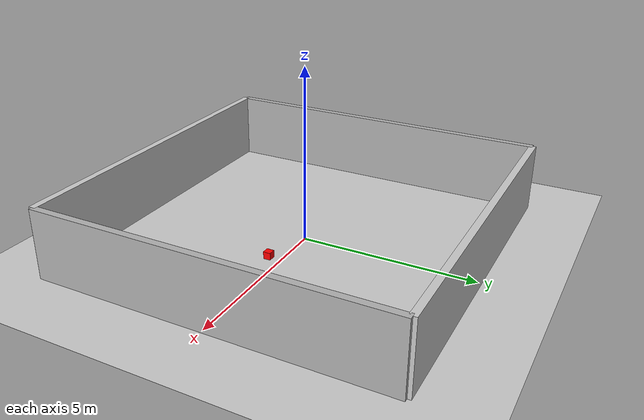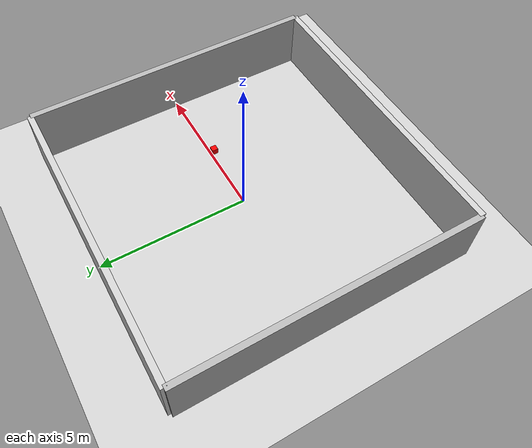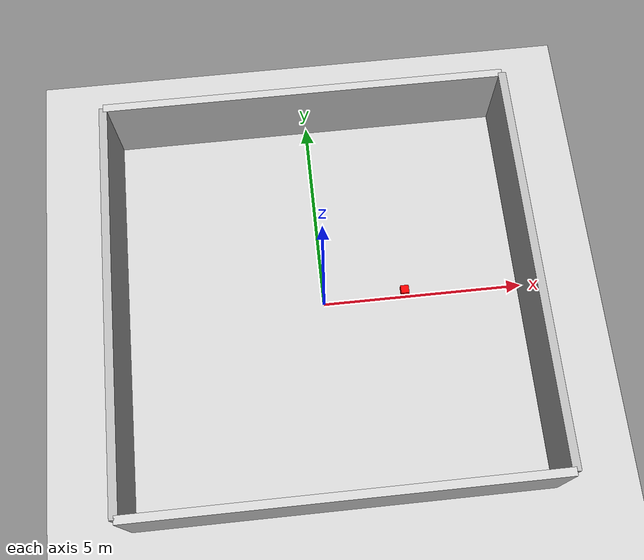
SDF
<sdf version="1.7">
 <world name="simple_world">
  <include><uri>model://sun</uri></include>
  <include><uri>model://ground_plane</uri></include>
  <physics name="default_physics" type="ode">
   <max_step_size>0.001</max_step_size>
   <real_time_factor>1</real_time_factor>
   <real_time_update_rate>1000</real_time_update_rate>
   <gravity>0 0 -9.8</gravity>
  </physics>
  <model name="wall_front">
   <pose>0 5 1 0 0 0</pose>
   <link name="link">
    <collision name="collision"><geometry><box><size>10 0.2 2</size></box></geometry></collision>
    <visual name="visual">
     <geometry><box><size>10 0.2 2</size></box></geometry>
     <material>
      <ambient>0.8 0.8 0.8 1</ambient>
      <diffuse>0.8 0.8 0.8 1</diffuse>
      <specular>0.1 0.1 0.1 1</specular>
     </material>
    </visual>
    <inertial>
     <mass>100</mass>
     <inertia><ixx>1</ixx><ixy>0</ixy><ixz>0</ixz><iyy>1</iyy><iyz>0</iyz><izz>1</izz></inertia>
    </inertial>
   </link>
  </model>
  <model name="wall_back">
   <pose>0 -5 1 0 0 3.14159</pose>
   <link name="link">
    <collision name="collision"><geometry><box><size>10 0.2 2</size></box></geometry></collision>
    <visual name="visual">
     <geometry><box><size>10 0.2 2</size></box></geometry>
     <material>
      <ambient>0.8 0.8 0.8 1</ambient>
      <diffuse>0.8 0.8 0.8 1</diffuse>
      <specular>0.1 0.1 0.1 1</specular>
     </material>
    </visual>
    <inertial>
     <mass>100</mass>
     <inertia><ixx>1</ixx><ixy>0</ixy><ixz>0</ixz><iyy>1</iyy><iyz>0</iyz><izz>1</izz></inertia>
    </inertial>
   </link>
  </model>
  <model name="wall_left">
   <pose>-5 0 1 0 0 1.5708</pose>
   <link name="link">
    <collision name="collision"><geometry><box><size>10 0.2 2</size></box></geometry></collision>
    <visual name="visual">
     <geometry><box><size>10 0.2 2</size></box></geometry>
     <material>
      <ambient>0.7 0.7 0.7 1</ambient>
      <diffuse>0.7 0.7 0.7 1</diffuse>
      <specular>0.1 0.1 0.1 1</specular>
     </material>
    </visual>
    <inertial>
     <mass>100</mass>
     <inertia><ixx>1</ixx><ixy>0</ixy><ixz>0</ixz><iyy>1</iyy><iyz>0</iyz><izz>1</izz></inertia>
    </inertial>
   </link>
  </model>
  <model name="wall_right">
   <pose>5 0 1 0 0 -1.5708</pose>
   <link name="link">
    <collision name="collision"><geometry><box><size>10 0.2 2</size></box></geometry></collision>
    <visual name="visual">
     <geometry><box><size>10 0.2 2</size></box></geometry>
     <material>
      <ambient>0.7 0.7 0.7 1</ambient>
      <diffuse>0.7 0.7 0.7 1</diffuse>
      <specular>0.1 0.1 0.1 1</specular>
     </material>
    </visual>
    <inertial>
     <mass>100</mass>
     <inertia><ixx>1</ixx><ixy>0</ixy><ixz>0</ixz><iyy>1</iyy><iyz>0</iyz><izz>1</izz></inertia>
    </inertial>
   </link>
  </model>
  <model name="simple_object">
   <pose>2 0 0.5 0 0 0</pose>
   <link name="link">
    <collision name="collision"><geometry><box><size>0.2 0.2 0.2</size></box></geometry></collision>
    <visual name="visual">
     <geometry><box><size>0.2 0.2 0.2</size></box></geometry>
     <material><ambient>1 0 0 1</ambient><diffuse>1 0 0 1</diffuse><specular>0.5 0.5 0.5 1</specular></material>
    </visual>
    <inertial>
     <mass>1</mass>
     <inertia><ixx>0.0167</ixx><ixy>0</ixy><ixz>0</ixz><iyy>0.0167</iyy><iyz>0</iyz><izz>0.0167</izz></inertia>
    </inertial>
   </link>
  </model>
  <light name="directional_light" type="directional">
   <pose>0 0 10 0 0 0</pose>
   <diffuse>0.8 0.8 0.8 1</diffuse>
   <specular>0.2 0.2 0.2 1</specular>
   <attenuation>
    <range>1000</range>
    <constant>0.9</constant>
    <linear>0.01</linear>
    <quadratic>0.001</quadratic>
   </attenuation>
   <direction>-0.3 -0.3 -1</direction>
  </light>
  <scene><ambient>0.4 0.4 0.4 1</ambient><background>0.7 0.7 0.7 1</background><shadows>true</shadows></scene>
 </world>
</sdf>
